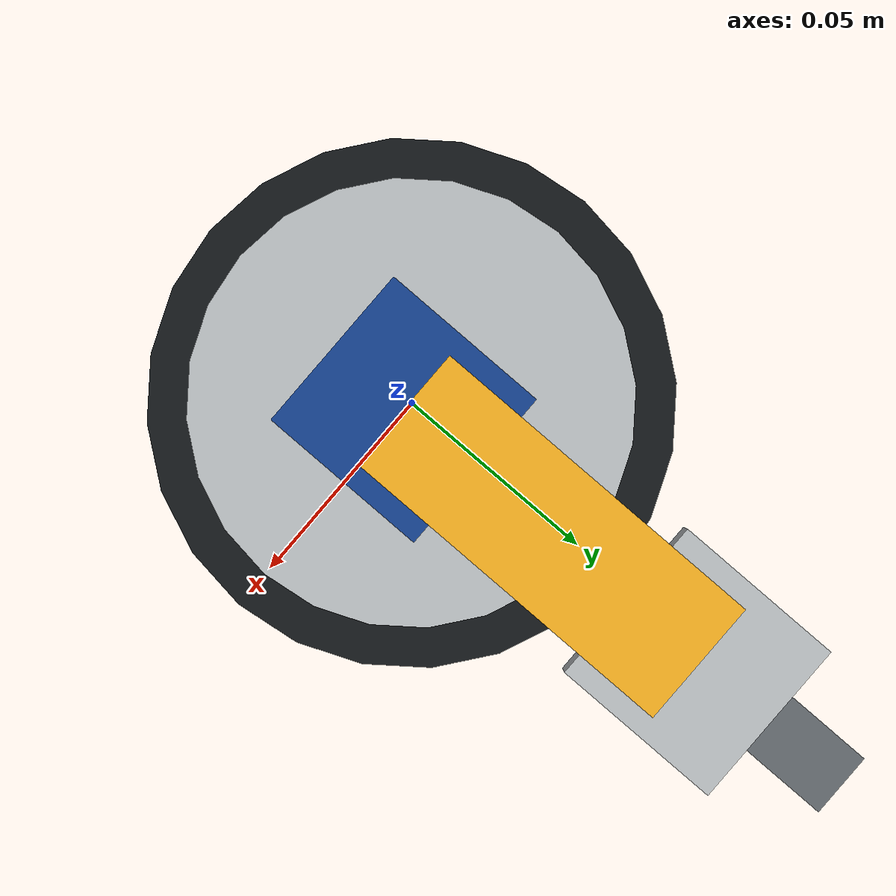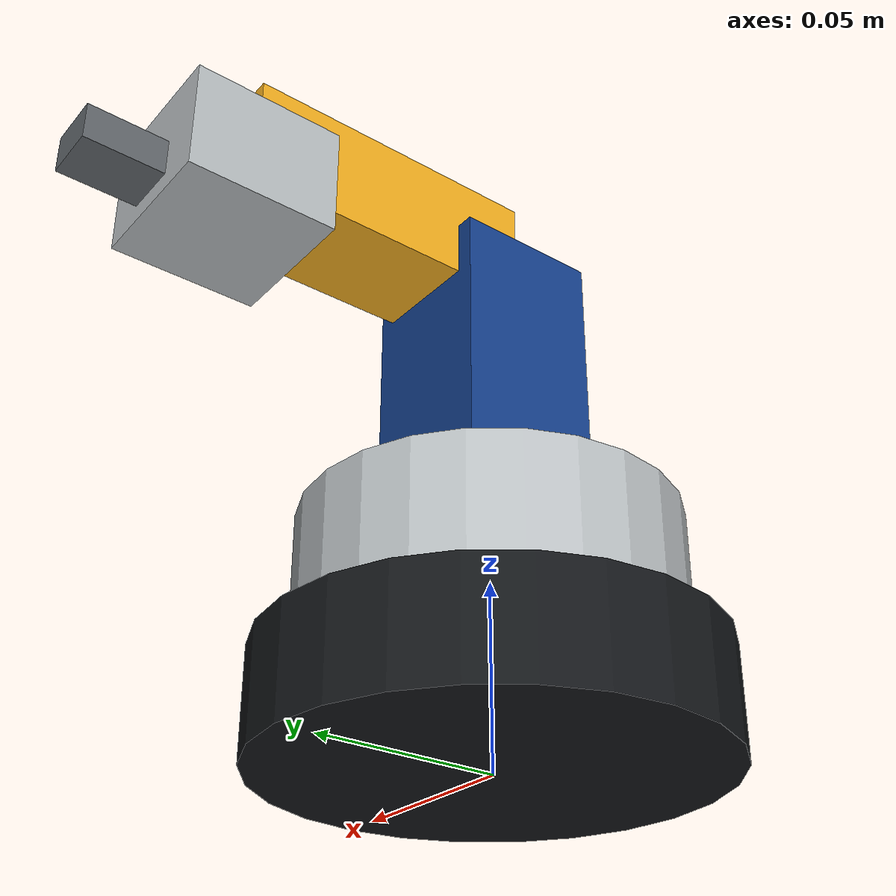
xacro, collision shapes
<?xml version="1.0"?>
<robot name="bras_robotique" xmlns:xacro="http://www.ros.org/wiki/xacro">
  <xacro:property name="PI" value="3.14159265359"/>
  <xacro:property name="description_package" value="modelisation_bras_robotique"/>
  <xacro:property name="mesh_scale" value="0.01 0.01 0.01"/>

  <xacro:include filename="$(find modelisation_bras_robotique)/urdf/materials.xacro"/>
  <xacro:include filename="$(find modelisation_bras_robotique)/urdf/inertials.xacro"/>
  <xacro:include filename="$(find modelisation_bras_robotique)/urdf/arm_macro.xacro"/>

  <link name="world"/>

  <link name="base_link">
    <xacro:mesh_visual mesh="basement.STL" material="industrial_dark" xyz="-0.5 -0.5 0" rpy="0 0 0"/>
    <xacro:cylinder_collision xyz="0 0 0.015" rpy="0 0 0" radius="0.06" length="0.03"/>
    <xacro:box_link_inertial mass="1.0" x="0.12" y="0.12" z="0.03" xyz="0 0 0.015"/>
  </link>

  <joint name="virtual_joint" type="fixed">
    <parent link="world"/>
    <child link="base_link"/>
    <origin xyz="0 0 0" rpy="0 0 0"/>
  </joint>

  <link name="base_plate">
    <xacro:mesh_visual mesh="base_plate.STL" material="industrial_silver" xyz="-0.39 -0.39 -0.56" rpy="0 0 0"/>
    <xacro:cylinder_collision xyz="0 0 0.0175" rpy="0 0 0" radius="0.05" length="0.035"/>
    <xacro:box_link_inertial mass="0.8" x="0.1" y="0.1" z="0.035" xyz="0 0 0.0175"/>
  </link>

  <joint name="joint1" type="revolute">
    <parent link="base_link"/>
    <child link="base_plate"/>
    <!-- Repere base_link/base_plate : ecart vertical de 3.07 cm mesure sur le schema -> Z=0.0307. Axe a confirmer dans RViz. -->
    <origin xyz="0 0 0.0307" rpy="0 0 0"/>
    <axis xyz="0 0 1"/>
    <limit lower="-3.14" upper="3.14" effort="30.0" velocity="2.0"/>
  </joint>

  <link name="forward_drive_arm">
    <xacro:mesh_visual mesh="forward_drive_arm.STL" material="industrial_blue" xyz="0.19 0.06 -0.08" rpy="0 -${PI/2} ${PI/2}"/>
    <xacro:box_collision xyz="0 0 0.04" rpy="0 0 0" size="0.04 0.04 0.08"/>
    <xacro:box_link_inertial mass="0.6" x="0.04" y="0.04" z="0.08" xyz="0 0 0.04"/>
  </link>

  <joint name="joint2" type="revolute">
    <parent link="base_plate"/>
    <child link="forward_drive_arm"/>
    <!-- Repere base_plate/forward_drive_arm : ecart vertical de 3.5 cm + ecart lateral de 2 mm mesures sur le schema -> Z=0.035, X=0.002. Axes a confirmer dans RViz. -->
    <origin xyz="0.002 0 0.035" rpy="0 0 0"/>
    <axis xyz="1 0 0"/>
    <limit lower="-1.57" upper="1.57" effort="25.0" velocity="2.0"/>
  </joint>

  <link name="horizontal_arm">
    <xacro:mesh_visual mesh="horizontal_arm.STL" material="industrial_yellow" xyz="-0.03 -0.4 -0.06" rpy="${PI/2} 0 ${PI/2}"/>
    <xacro:box_collision xyz="0 0.041 0" rpy="0 0 0" size="0.03 0.082 0.03"/>
    <xacro:box_link_inertial mass="0.5" x="0.03" y="0.082" z="0.03" xyz="0 0.041 0"/>
  </link>

  <joint name="joint3" type="revolute">
    <parent link="forward_drive_arm"/>
    <child link="horizontal_arm"/>
    <!-- Repere forward_drive_arm/horizontal_arm : ecart vertical de 8 cm mesure sur le schema -> Z=0.08. Axe a confirmer dans RViz. -->
    <origin xyz="0 0 0.08" rpy="0 0 0"/>
    <axis xyz="1 0 0"/>
    <limit lower="-1.57" upper="1.57" effort="20.0" velocity="2.0"/>
  </joint>

  <link name="claw_support">
    <xacro:mesh_visual mesh="claw_support.STL" material="industrial_silver" xyz="0 -0.05 -0.15" rpy="0 0 ${PI/2}"/>
    <xacro:box_collision xyz="0 0 -0.01" rpy="0 0 0" size="0.04 0.04 0.03"/>
    <xacro:box_link_inertial mass="0.25" x="0.04" y="0.04" z="0.03" xyz="0 0 -0.01"/>
  </link>

  <joint name="joint_claw" type="fixed">
    <parent link="horizontal_arm"/>
    <child link="claw_support"/>
    <!-- Repere horizontal_arm/claw_support : longueur d'avant-bras de 8.2 cm mesuree sur le schema -> Y=0.082. Axe a confirmer dans RViz. -->
    <origin xyz="0 0.082 0" rpy="0 0 0"/>
  </joint>

  <link name="gripper_right">
    <xacro:mesh_visual mesh="right_finger.STL" material="gripper_gray" xyz="-0.1 0.5 -0.1" rpy="0 0 -${PI/2}"/>
    <xacro:box_collision xyz="0 0.015 -0.005" rpy="0 0 0" size="0.015 0.03 0.01"/>
    <xacro:box_link_inertial mass="0.1" x="0.015" y="0.03" z="0.01" xyz="0 0.015 -0.005"/>
  </link>

  <joint name="joint4" type="revolute">
    <parent link="claw_support"/>
    <child link="gripper_right"/>
    <!-- Repere claw_support/gripper_right : ecart de 2.2 cm entre pivots reparti +/-1.1 cm sur Y, decalage de -1 cm sur Z (mesures pince). Axes a confirmer dans RViz. -->
    <origin xyz="0 0.011 -0.01" rpy="0 0 0"/>
    <axis xyz="0 0 1"/>
    <limit lower="-0.5" upper="0.0" effort="10.0" velocity="2.0"/>
  </joint>

  <link name="gripper_left">
    <xacro:mesh_visual mesh="left_finger.STL" material="gripper_gray" xyz="-0.04 0.5 -0.1" rpy="0 0 -${PI/2}"/>
    <xacro:box_collision xyz="0 0.015 -0.005" rpy="0 0 0" size="0.015 0.03 0.01"/>
    <xacro:box_link_inertial mass="0.1" x="0.015" y="0.03" z="0.01" xyz="0 0.015 -0.005"/>
  </link>

  <joint name="joint5" type="revolute">
    <parent link="claw_support"/>
    <child link="gripper_left"/>
    <!-- Repere claw_support/gripper_left : symetrique de joint4 (Y=-0.011, Z=-0.01), suit joint4 via mimic. Axes a confirmer dans RViz. -->
    <origin xyz="0 -0.011 -0.01" rpy="0 0 0"/>
    <axis xyz="0 0 1"/>
    <limit lower="0.0" upper="0.5" effort="10.0" velocity="2.0"/>
    <mimic joint="joint4" multiplier="-1"/>
  </joint>
</robot>

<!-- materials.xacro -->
<robot xmlns:xacro="http://www.ros.org/wiki/xacro">
  <material name="industrial_dark">
    <color rgba="0.08 0.09 0.10 1.0"/>
  </material>
  <material name="industrial_blue">
    <color rgba="0.08 0.25 0.55 1.0"/>
  </material>
  <material name="industrial_silver">
    <color rgba="0.72 0.74 0.75 1.0"/>
  </material>
  <material name="industrial_yellow">
    <color rgba="0.95 0.68 0.12 1.0"/>
  </material>
  <material name="gripper_gray">
    <color rgba="0.38 0.40 0.42 1.0"/>
  </material>
</robot>

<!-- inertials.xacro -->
<robot xmlns:xacro="http://www.ros.org/wiki/xacro">
  <xacro:macro name="box_inertia" params="mass x y z">
    <inertia
      ixx="${mass * (y * y + z * z) / 12.0}"
      ixy="0.0"
      ixz="0.0"
      iyy="${mass * (x * x + z * z) / 12.0}"
      iyz="0.0"
      izz="${mass * (x * x + y * y) / 12.0}"/>
  </xacro:macro>

  <xacro:macro name="box_link_inertial" params="mass x y z xyz:='0 0 0' rpy:='0 0 0'">
    <inertial>
      <origin xyz="${xyz}" rpy="${rpy}"/>
      <mass value="${mass}"/>
      <xacro:box_inertia mass="${mass}" x="${x}" y="${y}" z="${z}"/>
    </inertial>
  </xacro:macro>
</robot>

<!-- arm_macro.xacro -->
<robot xmlns:xacro="http://www.ros.org/wiki/xacro">
  <xacro:macro name="mesh_visual" params="mesh material xyz rpy">
    <visual>
      <origin xyz="${xyz}" rpy="${rpy}"/>
      <geometry>
        <mesh filename="package://${description_package}/meshes/${mesh}" scale="${mesh_scale}"/>
      </geometry>
      <material name="${material}"/>
    </visual>
  </xacro:macro>

  <xacro:macro name="box_collision" params="xyz rpy size">
    <collision>
      <origin xyz="${xyz}" rpy="${rpy}"/>
      <geometry>
        <box size="${size}"/>
      </geometry>
    </collision>
  </xacro:macro>

  <xacro:macro name="cylinder_collision" params="xyz rpy radius length">
    <collision>
      <origin xyz="${xyz}" rpy="${rpy}"/>
      <geometry>
        <cylinder radius="${radius}" length="${length}"/>
      </geometry>
    </collision>
  </xacro:macro>
</robot>
